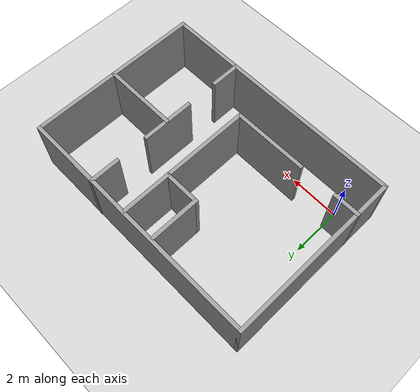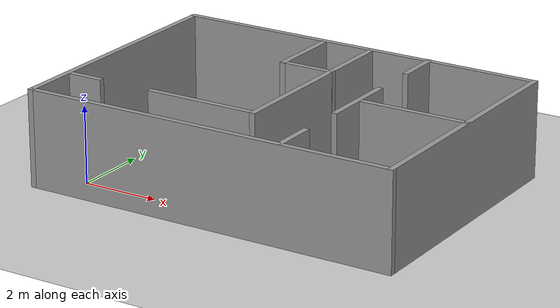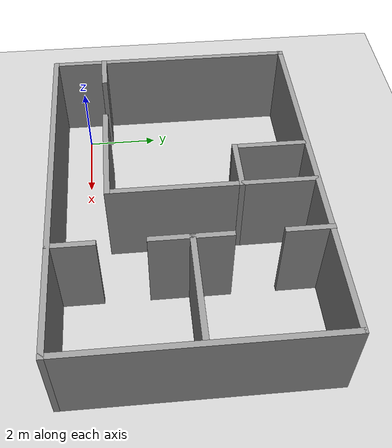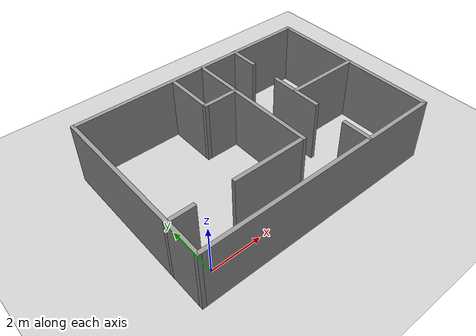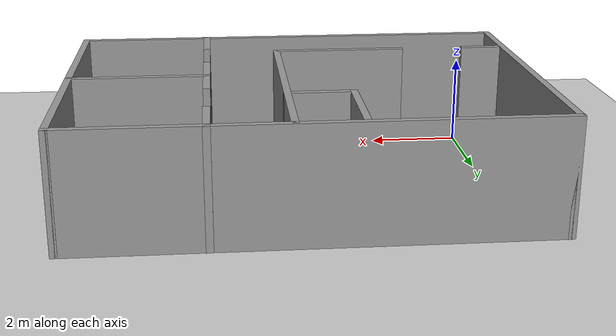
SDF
<sdf version="1.6">
 <world name="default">
  <light name="sun" type="directional">
   <pose>0 0 10 0 -0 0</pose>
   <diffuse>0.8 0.8 0.8 1</diffuse>
   <specular>0.1 0.1 0.1 1</specular>
   <attenuation>
    <range>1000</range>
    <constant>0.9</constant>
    <linear>0.01</linear>
    <quadratic>0.001</quadratic>
   </attenuation>
   <direction>-0.5 0.5 -1</direction>
  </light>
  <model name="ground_plane">
   <static>1</static>
   <link name="link">
    <collision name="collision">
     <geometry><plane><normal>0 0 1</normal><size>100 100</size></plane></geometry>
     <surface><friction><ode><mu>100</mu><mu2>50</mu2></ode></friction></surface>
    </collision>
    <visual name="visual">
     <cast_shadows>0</cast_shadows>
     <geometry><plane><normal>0 0 1</normal><size>100 100</size></plane></geometry>
     <material>
      <script><uri>file://media/materials/scripts/gazebo.material</uri><name>Gazebo/Grey</name></script>
     </material>
    </visual>
   </link>
  </model>
  <gravity>0 0 -9.8</gravity>
  <magnetic_field>6e-06 2.3e-05 -4.2e-05</magnetic_field>
  <atmosphere type="adiabatic"/>
  <physics name="default_physics" default="0" type="ode">
   <max_step_size>0.001</max_step_size>
   <real_time_factor>1</real_time_factor>
   <real_time_update_rate>1000</real_time_update_rate>
  </physics>
  <scene><ambient>0.4 0.4 0.4 1</ambient><background>0.7 0.7 0.7 1</background><shadows>1</shadows></scene>
  <spherical_coordinates>
   <surface_model>EARTH_WGS84</surface_model>
   <latitude_deg>0</latitude_deg>
   <longitude_deg>0</longitude_deg>
   <elevation>0</elevation>
   <heading_deg>0</heading_deg>
  </spherical_coordinates>
  <model name="Movis2_0">
   <pose>3.99542 2.62109 0 0 -0 0</pose>
   <link name="Wall_1">
    <collision name="Wall_1_Collision">
     <geometry><box><size>10 0.15 2.5</size></box></geometry>
     <pose>0 0 1.25 0 -0 0</pose>
    </collision>
    <visual name="Wall_1_Visual">
     <pose>0 0 1.25 0 -0 0</pose>
     <geometry><box><size>10 0.15 2.5</size></box></geometry>
     <material>
      <script><uri>file://media/materials/scripts/gazebo.material</uri><name>Gazebo/Grey</name></script>
      <ambient>1 1 1 1</ambient>
     </material>
    </visual>
    <pose>0.001003 3.41919 0 0 -0 0</pose>
   </link>
   <link name="Wall_11">
    <collision name="Wall_11_Collision">
     <geometry><box><size>3 0.15 2.5</size></box></geometry>
     <pose>0 0 1.25 0 -0 0</pose>
    </collision>
    <visual name="Wall_11_Visual">
     <pose>0 0 1.25 0 -0 0</pose>
     <geometry><box><size>3 0.15 2.5</size></box></geometry>
     <material>
      <script><uri>file://media/materials/scripts/gazebo.material</uri><name>Gazebo/Grey</name></script>
      <ambient>1 1 1 1</ambient>
     </material>
    </visual>
    <pose>3.4774 0.029454 0 0 -0 0</pose>
   </link>
   <link name="Wall_13">
    <collision name="Wall_13_Collision">
     <geometry><box><size>1.5 0.15 2.5</size></box></geometry>
     <pose>0 0 1.25 0 -0 0</pose>
    </collision>
    <visual name="Wall_13_Visual">
     <pose>0 0 1.25 0 -0 0</pose>
     <geometry><box><size>1.5 0.15 2.5</size></box></geometry>
     <material>
      <script><uri>file://media/materials/scripts/gazebo.material</uri><name>Gazebo/Grey</name></script>
      <ambient>1 1 1 1</ambient>
     </material>
    </visual>
    <pose>-0.247843 1.45332 0 0 -0 3.14159</pose>
   </link>
   <link name="Wall_14">
    <collision name="Wall_14_Collision">
     <geometry><box><size>2 0.15 2.5</size></box></geometry>
     <pose>0 0 1.25 0 -0 0</pose>
    </collision>
    <visual name="Wall_14_Visual">
     <pose>0 0 1.25 0 -0 0</pose>
     <geometry><box><size>2 0.15 2.5</size></box></geometry>
     <material>
      <script><uri>file://media/materials/scripts/gazebo.material</uri><name>Gazebo/Grey</name></script>
      <ambient>1 1 1 1</ambient>
     </material>
    </visual>
    <pose>-0.922843 2.37832 0 0 -0 1.5708</pose>
   </link>
   <link name="Wall_2">
    <collision name="Wall_2_Collision">
     <geometry><box><size>7 0.15 2.5</size></box></geometry>
     <pose>0 0 1.25 0 -0 0</pose>
    </collision>
    <visual name="Wall_2_Visual">
     <pose>0 0 1.25 0 -0 0</pose>
     <geometry><box><size>7 0.15 2.5</size></box></geometry>
     <material>
      <script><uri>file://media/materials/scripts/gazebo.material</uri><name>Gazebo/Grey</name></script>
      <ambient>1 1 1 1</ambient>
     </material>
    </visual>
    <pose>4.926 -0.00581 0 0 0 -1.5708</pose>
   </link>
   <link name="Wall_3">
    <collision name="Wall_3_Collision">
     <geometry><box><size>10 0.15 2.5</size></box></geometry>
     <pose>0 0 1.25 0 -0 0</pose>
    </collision>
    <visual name="Wall_3_Visual">
     <pose>0 0 1.25 0 -0 0</pose>
     <geometry><box><size>10 0.15 2.5</size></box></geometry>
     <material>
      <script><uri>file://media/materials/scripts/gazebo.material</uri><name>Gazebo/Grey</name></script>
      <ambient>1 1 1 1</ambient>
     </material>
    </visual>
    <pose>0.001003 -3.43081 0 0 -0 3.14159</pose>
   </link>
   <link name="Wall_4">
    <collision name="Wall_4_Collision">
     <geometry><box><size>7 0.15 2.5</size></box></geometry>
     <pose>0 0 1.25 0 -0 0</pose>
    </collision>
    <visual name="Wall_4_Visual">
     <pose>0 0 1.25 0 -0 0</pose>
     <geometry><box><size>7 0.15 2.5</size></box></geometry>
     <material>
      <script><uri>file://media/materials/scripts/gazebo.material</uri><name>Gazebo/Grey</name></script>
      <ambient>1 1 1 1</ambient>
     </material>
    </visual>
    <pose>-4.924 -0.00581 0 0 -0 1.5708</pose>
   </link>
   <link name="Wall_6">
    <pose>-2.251 -1.99216 0 0 -0 0</pose>
    <visual name="Wall_6_Visual_0">
     <pose>-2.21324 0 1.25 0 -0 0</pose>
     <geometry><box><size>1.07352 0.15 2.5</size></box></geometry>
     <material>
      <script><uri>file://media/materials/scripts/gazebo.material</uri><name>Gazebo/Grey</name></script>
      <ambient>1 1 1 1</ambient>
     </material>
    </visual>
    <collision name="Wall_6_Collision_0">
     <geometry><box><size>1.07352 0.15 2.5</size></box></geometry>
     <pose>-2.21324 0 1.25 0 -0 0</pose>
    </collision>
    <visual name="Wall_6_Visual_1">
     <pose>1.23676 0 1.25 0 -0 0</pose>
     <geometry><box><size>3.02648 0.15 2.5</size></box></geometry>
     <material>
      <script><uri>file://media/materials/scripts/gazebo.material</uri><name>Gazebo/Grey</name></script>
      <ambient>1 1 1 1</ambient>
     </material>
    </visual>
    <collision name="Wall_6_Collision_1">
     <geometry><box><size>3.02648 0.15 2.5</size></box></geometry>
     <pose>1.23676 0 1.25 0 -0 0</pose>
    </collision>
   </link>
   <link name="Wall_7">
    <collision name="Wall_7_Collision">
     <geometry><box><size>5.5 0.15 2.5</size></box></geometry>
     <pose>0 0 1.25 0 -0 0</pose>
    </collision>
    <visual name="Wall_7_Visual">
     <pose>0 0 1.25 0 -0 0</pose>
     <geometry><box><size>5.5 0.15 2.5</size></box></geometry>
     <material>
      <script><uri>file://media/materials/scripts/gazebo.material</uri><name>Gazebo/Grey</name></script>
      <ambient>1 1 1 1</ambient>
     </material>
    </visual>
    <pose>0.423996 0.682839 0 0 -0 1.5708</pose>
   </link>
   <link name="Wall_9">
    <pose>2.03611 0.00581 0 0 0 -1.5708</pose>
    <visual name="Wall_9_Visual_0">
     <pose>-2.87784 0 1.25 0 -0 0</pose>
     <geometry><box><size>1.24432 0.15 2.5</size></box></geometry>
     <material>
      <script><uri>file://media/materials/scripts/gazebo.material</uri><name>Gazebo/Grey</name></script>
      <ambient>1 1 1 1</ambient>
     </material>
    </visual>
    <collision name="Wall_9_Collision_0">
     <geometry><box><size>1.24432 0.15 2.5</size></box></geometry>
     <pose>-2.87784 0 1.25 0 -0 0</pose>
    </collision>
    <visual name="Wall_9_Visual_1">
     <pose>0.009719 0 1.25 0 -0 0</pose>
     <geometry><box><size>2.13081 0.15 2.5</size></box></geometry>
     <material>
      <script><uri>file://media/materials/scripts/gazebo.material</uri><name>Gazebo/Grey</name></script>
      <ambient>1 1 1 1</ambient>
     </material>
    </visual>
    <collision name="Wall_9_Collision_1">
     <geometry><box><size>2.13081 0.15 2.5</size></box></geometry>
     <pose>0.009719 0 1.25 0 -0 0</pose>
    </collision>
    <visual name="Wall_9_Visual_2">
     <pose>2.88756 0 1.25 0 -0 0</pose>
     <geometry><box><size>1.22488 0.15 2.5</size></box></geometry>
     <material>
      <script><uri>file://media/materials/scripts/gazebo.material</uri><name>Gazebo/Grey</name></script>
      <ambient>1 1 1 1</ambient>
     </material>
    </visual>
    <collision name="Wall_9_Collision_2">
     <geometry><box><size>1.22488 0.15 2.5</size></box></geometry>
     <pose>2.88756 0 1.25 0 -0 0</pose>
    </collision>
   </link>
   <static>1</static>
  </model>
 </world>
</sdf>
